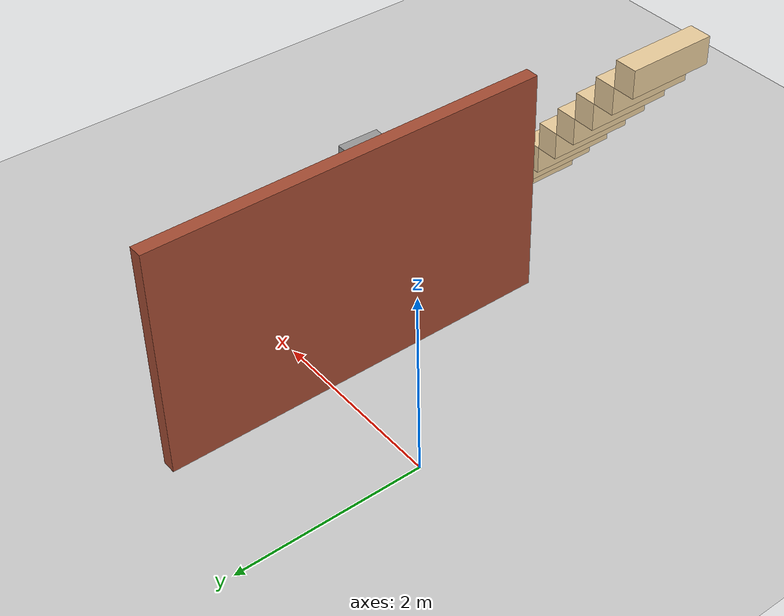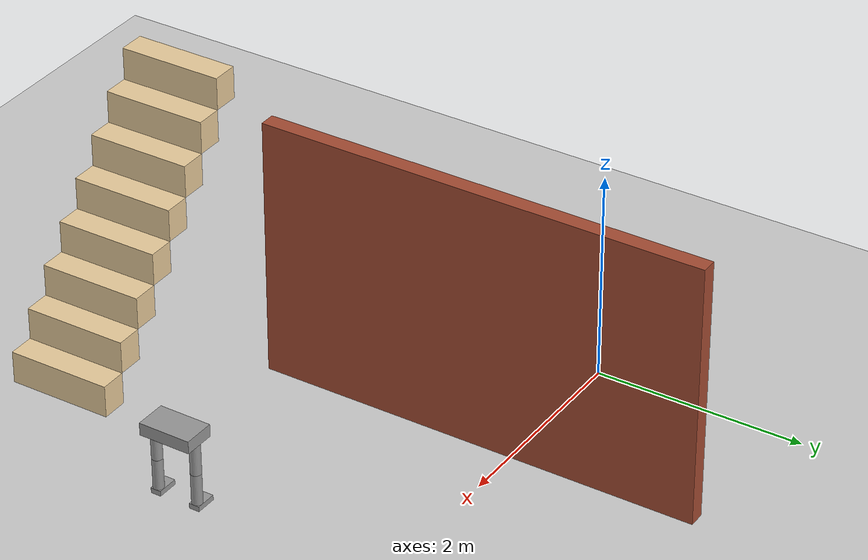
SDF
<sdf version="1.6">
 <world name="default">
  <model name="ground_plane">
   <static>1</static>
   <link name="link">
    <collision name="collision">
     <geometry><plane><normal>0 0 1</normal><size>100 100</size></plane></geometry>
     <surface><friction><ode><mu>100</mu><mu2>50</mu2></ode></friction></surface>
    </collision>
    <visual name="visual">
     <cast_shadows>0</cast_shadows>
     <geometry><plane><normal>0 0 1</normal><size>100 100</size></plane></geometry>
     <material>
      <script><uri>file://media/materials/scripts/gazebo.material</uri><name>Gazebo/Grey</name></script>
     </material>
    </visual>
   </link>
  </model>
  <model name="Humanoid">
   <link name="link_0">
    <pose>0.336877 -1.8722 0.949715 -0 -0 -0</pose>
    <inertial>
     <mass>1</mass>
     <inertia>
      <ixx>0.166667</ixx>
      <ixy>0</ixy>
      <ixz>0</ixz>
      <iyy>0.166667</iyy>
      <iyz>0</iyz>
      <izz>0.166667</izz>
     </inertia>
    </inertial>
    <visual name="visual">
     <geometry><box><size>0.3 0.5 0.12</size></box></geometry>
     <material>
      <lighting>1</lighting>
      <script><uri>file://media/materials/scripts/gazebo.material</uri><name>Gazebo/Grey</name></script>
      <shader type="pixel"><normal_map>__default__</normal_map></shader>
      <ambient>0.3 0.3 0.3 1</ambient>
      <diffuse>0.7 0.7 0.7 1</diffuse>
      <specular>0.01 0.01 0.01 1</specular>
      <emissive>0 0 0 1</emissive>
     </material>
    </visual>
    <collision name="collision">
     <geometry><box><size>0.3 0.5 0.1</size></box></geometry>
     <surface>
      <friction>
       <ode><mu>1</mu><mu2>1</mu2><fdir1>0 0 0</fdir1><slip1>0</slip1><slip2>0</slip2></ode>
       <torsional>
        <coefficient>1</coefficient>
        <patch_radius>0</patch_radius>
        <surface_radius>0</surface_radius>
        <use_patch_radius>1</use_patch_radius>
        <ode><slip>0</slip></ode>
       </torsional>
      </friction>
      <bounce><restitution_coefficient>0</restitution_coefficient><threshold>1e+06</threshold></bounce>
      <contact>
       <collide_without_contact>0</collide_without_contact>
       <collide_without_contact_bitmask>1</collide_without_contact_bitmask>
       <collide_bitmask>1</collide_bitmask>
       <ode>
        <soft_cfm>0</soft_cfm>
        <soft_erp>0.2</soft_erp>
        <kp>1e+13</kp>
        <kd>1</kd>
        <max_vel>0.01</max_vel>
        <min_depth>0</min_depth>
       </ode>
       <bullet>
        <split_impulse>1</split_impulse>
        <split_impulse_penetration_threshold>-0.01</split_impulse_penetration_threshold>
        <soft_cfm>0</soft_cfm>
        <soft_erp>0.2</soft_erp>
        <kp>1e+13</kp>
        <kd>1</kd>
       </bullet>
      </contact>
     </surface>
    </collision>
   </link>
   <link name="link_1">
    <pose>0.33738 -2.07145 0.439715 -0 -0 -0</pose>
    <inertial>
     <mass>1</mass>
     <inertia><ixx>0.145833</ixx><ixy>0</ixy><ixz>0</ixz><iyy>0.145833</iyy><iyz>0</iyz><izz>0.125</izz></inertia>
    </inertial>
    <visual name="visual">
     <geometry><cylinder><radius>0.05</radius><length>0.3</length></cylinder></geometry>
     <material>
      <lighting>1</lighting>
      <script><uri>file://media/materials/scripts/gazebo.material</uri><name>Gazebo/Grey</name></script>
      <shader type="pixel"><normal_map>__default__</normal_map></shader>
      <ambient>0.3 0.3 0.3 1</ambient>
      <diffuse>0.7 0.7 0.7 1</diffuse>
      <specular>0.01 0.01 0.01 1</specular>
      <emissive>0 0 0 1</emissive>
     </material>
    </visual>
    <collision name="collision">
     <geometry><cylinder><radius>0.05</radius><length>0.3</length></cylinder></geometry>
     <surface>
      <friction>
       <ode><mu>1</mu><mu2>1</mu2><fdir1>0 0 0</fdir1><slip1>0</slip1><slip2>0</slip2></ode>
       <torsional>
        <coefficient>1</coefficient>
        <patch_radius>0</patch_radius>
        <surface_radius>0</surface_radius>
        <use_patch_radius>1</use_patch_radius>
        <ode><slip>0</slip></ode>
       </torsional>
      </friction>
      <bounce><restitution_coefficient>0</restitution_coefficient><threshold>1e+06</threshold></bounce>
      <contact>
       <collide_without_contact>0</collide_without_contact>
       <collide_without_contact_bitmask>1</collide_without_contact_bitmask>
       <collide_bitmask>1</collide_bitmask>
       <ode>
        <soft_cfm>0</soft_cfm>
        <soft_erp>0.2</soft_erp>
        <kp>1e+13</kp>
        <kd>1</kd>
        <max_vel>0.01</max_vel>
        <min_depth>0</min_depth>
       </ode>
       <bullet>
        <split_impulse>1</split_impulse>
        <split_impulse_penetration_threshold>-0.01</split_impulse_penetration_threshold>
        <soft_cfm>0</soft_cfm>
        <soft_erp>0.2</soft_erp>
        <kp>1e+13</kp>
        <kd>1</kd>
       </bullet>
      </contact>
     </surface>
    </collision>
   </link>
   <link name="link_1_clone">
    <pose>0.336877 -2.0722 0.739716 -0 -0 -0</pose>
    <inertial>
     <mass>1</mass>
     <inertia><ixx>0.145833</ixx><ixy>0</ixy><ixz>0</ixz><iyy>0.145833</iyy><iyz>0</iyz><izz>0.125</izz></inertia>
    </inertial>
    <visual name="visual">
     <geometry><cylinder><radius>0.05</radius><length>0.3</length></cylinder></geometry>
     <material>
      <lighting>1</lighting>
      <script><uri>file://media/materials/scripts/gazebo.material</uri><name>Gazebo/Grey</name></script>
      <shader type="pixel"><normal_map>__default__</normal_map></shader>
      <ambient>0.3 0.3 0.3 1</ambient>
      <diffuse>0.7 0.7 0.7 1</diffuse>
      <specular>0.01 0.01 0.01 1</specular>
      <emissive>0 0 0 1</emissive>
     </material>
    </visual>
    <collision name="collision">
     <geometry><cylinder><radius>0.05</radius><length>0.3</length></cylinder></geometry>
     <surface>
      <friction>
       <ode><mu>1</mu><mu2>1</mu2><fdir1>0 0 0</fdir1><slip1>0</slip1><slip2>0</slip2></ode>
       <torsional>
        <coefficient>1</coefficient>
        <patch_radius>0</patch_radius>
        <surface_radius>0</surface_radius>
        <use_patch_radius>1</use_patch_radius>
        <ode><slip>0</slip></ode>
       </torsional>
      </friction>
      <bounce><restitution_coefficient>0</restitution_coefficient><threshold>1e+06</threshold></bounce>
      <contact>
       <collide_without_contact>0</collide_without_contact>
       <collide_without_contact_bitmask>1</collide_without_contact_bitmask>
       <collide_bitmask>1</collide_bitmask>
       <ode>
        <soft_cfm>0</soft_cfm>
        <soft_erp>0.2</soft_erp>
        <kp>1e+13</kp>
        <kd>1</kd>
        <max_vel>0.01</max_vel>
        <min_depth>0</min_depth>
       </ode>
       <bullet>
        <split_impulse>1</split_impulse>
        <split_impulse_penetration_threshold>-0.01</split_impulse_penetration_threshold>
        <soft_cfm>0</soft_cfm>
        <soft_erp>0.2</soft_erp>
        <kp>1e+13</kp>
        <kd>1</kd>
       </bullet>
      </contact>
     </surface>
    </collision>
   </link>
   <link name="link_1_clone_0">
    <pose>0.336877 -1.6722 0.739716 -0 -0 -0</pose>
    <inertial>
     <mass>1</mass>
     <inertia><ixx>0.145833</ixx><ixy>0</ixy><ixz>0</ixz><iyy>0.145833</iyy><iyz>0</iyz><izz>0.125</izz></inertia>
    </inertial>
    <visual name="visual">
     <geometry><cylinder><radius>0.05</radius><length>0.3</length></cylinder></geometry>
     <material>
      <lighting>1</lighting>
      <script><uri>file://media/materials/scripts/gazebo.material</uri><name>Gazebo/Grey</name></script>
      <shader type="pixel"><normal_map>__default__</normal_map></shader>
      <ambient>0.3 0.3 0.3 1</ambient>
      <diffuse>0.7 0.7 0.7 1</diffuse>
      <specular>0.01 0.01 0.01 1</specular>
      <emissive>0 0 0 1</emissive>
     </material>
    </visual>
    <collision name="collision">
     <geometry><cylinder><radius>0.05</radius><length>0.3</length></cylinder></geometry>
     <surface>
      <friction>
       <ode><mu>1</mu><mu2>1</mu2><fdir1>0 0 0</fdir1><slip1>0</slip1><slip2>0</slip2></ode>
       <torsional>
        <coefficient>1</coefficient>
        <patch_radius>0</patch_radius>
        <surface_radius>0</surface_radius>
        <use_patch_radius>1</use_patch_radius>
        <ode><slip>0</slip></ode>
       </torsional>
      </friction>
      <bounce><restitution_coefficient>0</restitution_coefficient><threshold>1e+06</threshold></bounce>
      <contact>
       <collide_without_contact>0</collide_without_contact>
       <collide_without_contact_bitmask>1</collide_without_contact_bitmask>
       <collide_bitmask>1</collide_bitmask>
       <ode>
        <soft_cfm>0</soft_cfm>
        <soft_erp>0.2</soft_erp>
        <kp>1e+13</kp>
        <kd>1</kd>
        <max_vel>0.01</max_vel>
        <min_depth>0</min_depth>
       </ode>
       <bullet>
        <split_impulse>1</split_impulse>
        <split_impulse_penetration_threshold>-0.01</split_impulse_penetration_threshold>
        <soft_cfm>0</soft_cfm>
        <soft_erp>0.2</soft_erp>
        <kp>1e+13</kp>
        <kd>1</kd>
       </bullet>
      </contact>
     </surface>
    </collision>
   </link>
   <link name="link_1_clone_1">
    <pose>0.336877 -1.6722 0.439715 -0 -0 -0</pose>
    <inertial>
     <mass>1</mass>
     <inertia><ixx>0.145833</ixx><ixy>0</ixy><ixz>0</ixz><iyy>0.145833</iyy><iyz>0</iyz><izz>0.125</izz></inertia>
    </inertial>
    <visual name="visual">
     <geometry><cylinder><radius>0.05</radius><length>0.3</length></cylinder></geometry>
     <material>
      <lighting>1</lighting>
      <script><uri>file://media/materials/scripts/gazebo.material</uri><name>Gazebo/Grey</name></script>
      <shader type="pixel"><normal_map>__default__</normal_map></shader>
      <ambient>0.3 0.3 0.3 1</ambient>
      <diffuse>0.7 0.7 0.7 1</diffuse>
      <specular>0.01 0.01 0.01 1</specular>
      <emissive>0 0 0 1</emissive>
     </material>
    </visual>
    <collision name="collision">
     <geometry><cylinder><radius>0.05</radius><length>0.3</length></cylinder></geometry>
     <surface>
      <friction>
       <ode><mu>1</mu><mu2>1</mu2><fdir1>0 0 0</fdir1><slip1>0</slip1><slip2>0</slip2></ode>
       <torsional>
        <coefficient>1</coefficient>
        <patch_radius>0</patch_radius>
        <surface_radius>0</surface_radius>
        <use_patch_radius>1</use_patch_radius>
        <ode><slip>0</slip></ode>
       </torsional>
      </friction>
      <bounce><restitution_coefficient>0</restitution_coefficient><threshold>1e+06</threshold></bounce>
      <contact>
       <collide_without_contact>0</collide_without_contact>
       <collide_without_contact_bitmask>1</collide_without_contact_bitmask>
       <collide_bitmask>1</collide_bitmask>
       <ode>
        <soft_cfm>0</soft_cfm>
        <soft_erp>0.2</soft_erp>
        <kp>1e+13</kp>
        <kd>1</kd>
        <max_vel>0.01</max_vel>
        <min_depth>0</min_depth>
       </ode>
       <bullet>
        <split_impulse>1</split_impulse>
        <split_impulse_penetration_threshold>-0.01</split_impulse_penetration_threshold>
        <soft_cfm>0</soft_cfm>
        <soft_erp>0.2</soft_erp>
        <kp>1e+13</kp>
        <kd>1</kd>
       </bullet>
      </contact>
     </surface>
    </collision>
   </link>
   <link name="link_2">
    <pose>0.284566 -2.06785 0.266379 -0 -0 -0</pose>
    <inertial>
     <mass>1</mass>
     <inertia>
      <ixx>0.166667</ixx>
      <ixy>0</ixy>
      <ixz>0</ixz>
      <iyy>0.166667</iyy>
      <iyz>0</iyz>
      <izz>0.166667</izz>
     </inertia>
    </inertial>
    <visual name="visual">
     <geometry><box><size>0.2 0.1 0.05</size></box></geometry>
     <material>
      <lighting>1</lighting>
      <script><uri>file://media/materials/scripts/gazebo.material</uri><name>Gazebo/Grey</name></script>
      <shader type="pixel"><normal_map>__default__</normal_map></shader>
      <ambient>0.3 0.3 0.3 1</ambient>
      <diffuse>0.7 0.7 0.7 1</diffuse>
      <specular>0.01 0.01 0.01 1</specular>
      <emissive>0 0 0 1</emissive>
     </material>
    </visual>
    <collision name="collision">
     <geometry><box><size>0.2 0.1 0.05</size></box></geometry>
     <surface>
      <friction>
       <ode><mu>1</mu><mu2>1</mu2><fdir1>0 0 0</fdir1><slip1>0</slip1><slip2>0</slip2></ode>
       <torsional>
        <coefficient>1</coefficient>
        <patch_radius>0</patch_radius>
        <surface_radius>0</surface_radius>
        <use_patch_radius>1</use_patch_radius>
        <ode><slip>0</slip></ode>
       </torsional>
      </friction>
      <bounce><restitution_coefficient>0</restitution_coefficient><threshold>1e+06</threshold></bounce>
      <contact>
       <collide_without_contact>0</collide_without_contact>
       <collide_without_contact_bitmask>1</collide_without_contact_bitmask>
       <collide_bitmask>1</collide_bitmask>
       <ode>
        <soft_cfm>0</soft_cfm>
        <soft_erp>0.2</soft_erp>
        <kp>1e+13</kp>
        <kd>1</kd>
        <max_vel>0.01</max_vel>
        <min_depth>0</min_depth>
       </ode>
       <bullet>
        <split_impulse>1</split_impulse>
        <split_impulse_penetration_threshold>-0.01</split_impulse_penetration_threshold>
        <soft_cfm>0</soft_cfm>
        <soft_erp>0.2</soft_erp>
        <kp>1e+13</kp>
        <kd>1</kd>
       </bullet>
      </contact>
     </surface>
    </collision>
   </link>
   <link name="link_2_clone">
    <pose>0.284446 -1.67061 0.264715 -0 -0 -0</pose>
    <inertial>
     <mass>1</mass>
     <inertia>
      <ixx>0.166667</ixx>
      <ixy>0</ixy>
      <ixz>0</ixz>
      <iyy>0.166667</iyy>
      <iyz>0</iyz>
      <izz>0.166667</izz>
     </inertia>
    </inertial>
    <visual name="visual">
     <geometry><box><size>0.2 0.1 0.05</size></box></geometry>
     <material>
      <lighting>1</lighting>
      <script><uri>file://media/materials/scripts/gazebo.material</uri><name>Gazebo/Grey</name></script>
      <shader type="pixel"><normal_map>__default__</normal_map></shader>
      <ambient>0.3 0.3 0.3 1</ambient>
      <diffuse>0.7 0.7 0.7 1</diffuse>
      <specular>0.01 0.01 0.01 1</specular>
      <emissive>0 0 0 1</emissive>
     </material>
    </visual>
    <collision name="collision">
     <geometry><box><size>0.2 0.1 0.05</size></box></geometry>
     <surface>
      <friction>
       <ode><mu>1</mu><mu2>1</mu2><fdir1>0 0 0</fdir1><slip1>0</slip1><slip2>0</slip2></ode>
       <torsional>
        <coefficient>1</coefficient>
        <patch_radius>0</patch_radius>
        <surface_radius>0</surface_radius>
        <use_patch_radius>1</use_patch_radius>
        <ode><slip>0</slip></ode>
       </torsional>
      </friction>
      <bounce><restitution_coefficient>0</restitution_coefficient><threshold>1e+06</threshold></bounce>
      <contact>
       <collide_without_contact>0</collide_without_contact>
       <collide_without_contact_bitmask>1</collide_without_contact_bitmask>
       <collide_bitmask>1</collide_bitmask>
       <ode>
        <soft_cfm>0</soft_cfm>
        <soft_erp>0.2</soft_erp>
        <kp>1e+13</kp>
        <kd>1</kd>
        <max_vel>0.01</max_vel>
        <min_depth>0</min_depth>
       </ode>
       <bullet>
        <split_impulse>1</split_impulse>
        <split_impulse_penetration_threshold>-0.01</split_impulse_penetration_threshold>
        <soft_cfm>0</soft_cfm>
        <soft_erp>0.2</soft_erp>
        <kp>1e+13</kp>
        <kd>1</kd>
       </bullet>
      </contact>
     </surface>
    </collision>
   </link>
   <joint name="link_0_JOINT_0" type="fixed">
    <parent>link_0</parent>
    <child>link_1_clone</child>
    <physics>
     <ode><limit><cfm>0</cfm><erp>0.2</erp></limit><suspension><cfm>0</cfm><erp>0.2</erp></suspension></ode>
    </physics>
   </joint>
   <joint name="link_0_JOINT_1" type="fixed">
    <parent>link_0</parent>
    <child>link_1_clone_0</child>
    <physics>
     <ode><limit><cfm>0</cfm><erp>0.2</erp></limit><suspension><cfm>0</cfm><erp>0.2</erp></suspension></ode>
    </physics>
   </joint>
   <joint name="link_1_JOINT_5" type="fixed">
    <parent>link_1</parent>
    <child>link_2</child>
    <physics>
     <ode><limit><cfm>0</cfm><erp>0.2</erp></limit><suspension><cfm>0</cfm><erp>0.2</erp></suspension></ode>
    </physics>
   </joint>
   <joint name="link_1_clone_0_JOINT_2" type="fixed">
    <parent>link_1_clone_0</parent>
    <child>link_1_clone_1</child>
    <physics>
     <ode><limit><cfm>0</cfm><erp>0.2</erp></limit><suspension><cfm>0</cfm><erp>0.2</erp></suspension></ode>
    </physics>
   </joint>
   <joint name="link_1_clone_1_JOINT_4" type="fixed">
    <parent>link_1_clone_1</parent>
    <child>link_2_clone</child>
    <physics>
     <ode><limit><cfm>0</cfm><erp>0.2</erp></limit><suspension><cfm>0</cfm><erp>0.2</erp></suspension></ode>
    </physics>
   </joint>
   <joint name="link_1_clone_JOINT_3" type="revolute">
    <parent>link_1_clone</parent>
    <child>link_1</child>
    <axis>
     <xyz>1 0 0</xyz>
     <use_parent_model_frame>0</use_parent_model_frame>
     <limit>
      <lower>-1.79769e+308</lower>
      <upper>1.79769e+308</upper>
      <effort>-1</effort>
      <velocity>-1</velocity>
     </limit>
     <dynamics>
      <spring_reference>0</spring_reference>
      <spring_stiffness>0</spring_stiffness>
      <damping>0</damping>
      <friction>0</friction>
     </dynamics>
    </axis>
    <physics>
     <ode><limit><cfm>0</cfm><erp>0.2</erp></limit><suspension><cfm>0</cfm><erp>0.2</erp></suspension></ode>
    </physics>
   </joint>
   <static>0</static>
   <pose>3.18747 -0.142987 -0.231577 0.00473 -4e-06 -0.012782</pose>
  </model>
  <model name="Home">
   <link name="Stairs_2">
    <visual name="Stairs_2_Visual_0">
     <pose>2.4646 -2.89263 0.15625 0 0 -1.5708</pose>
     <geometry><box><size>1 0.25375 0.3125</size></box></geometry>
     <material>
      <script><uri>file://media/materials/scripts/gazebo.material</uri><name>Gazebo/Grey</name></script>
      <ambient>0.921569 0.807843 0.615686 1</ambient>
     </material>
     <meta><layer>0</layer></meta>
    </visual>
    <visual name="Stairs_2_Visual_1">
     <pose>2.21085 -2.89263 0.46875 0 0 -1.5708</pose>
     <geometry><box><size>1 0.25375 0.3125</size></box></geometry>
     <material>
      <script><uri>file://media/materials/scripts/gazebo.material</uri><name>Gazebo/Grey</name></script>
      <ambient>0.921569 0.807843 0.615686 1</ambient>
     </material>
     <meta><layer>0</layer></meta>
    </visual>
    <visual name="Stairs_2_Visual_2">
     <pose>1.9571 -2.89263 0.78125 0 0 -1.5708</pose>
     <geometry><box><size>1 0.25375 0.3125</size></box></geometry>
     <material>
      <script><uri>file://media/materials/scripts/gazebo.material</uri><name>Gazebo/Grey</name></script>
      <ambient>0.921569 0.807843 0.615686 1</ambient>
     </material>
     <meta><layer>0</layer></meta>
    </visual>
    <visual name="Stairs_2_Visual_3">
     <pose>1.70335 -2.89263 1.09375 0 0 -1.5708</pose>
     <geometry><box><size>1 0.25375 0.3125</size></box></geometry>
     <material>
      <script><uri>file://media/materials/scripts/gazebo.material</uri><name>Gazebo/Grey</name></script>
      <ambient>0.921569 0.807843 0.615686 1</ambient>
     </material>
     <meta><layer>0</layer></meta>
    </visual>
    <visual name="Stairs_2_Visual_4">
     <pose>1.4496 -2.89263 1.40625 0 0 -1.5708</pose>
     <geometry><box><size>1 0.25375 0.3125</size></box></geometry>
     <material>
      <script><uri>file://media/materials/scripts/gazebo.material</uri><name>Gazebo/Grey</name></script>
      <ambient>0.921569 0.807843 0.615686 1</ambient>
     </material>
     <meta><layer>0</layer></meta>
    </visual>
    <visual name="Stairs_2_Visual_5">
     <pose>1.19585 -2.89263 1.71875 0 0 -1.5708</pose>
     <geometry><box><size>1 0.25375 0.3125</size></box></geometry>
     <material>
      <script><uri>file://media/materials/scripts/gazebo.material</uri><name>Gazebo/Grey</name></script>
      <ambient>0.921569 0.807843 0.615686 1</ambient>
     </material>
     <meta><layer>0</layer></meta>
    </visual>
    <visual name="Stairs_2_Visual_6">
     <pose>0.942102 -2.89263 2.03125 0 0 -1.5708</pose>
     <geometry><box><size>1 0.25375 0.3125</size></box></geometry>
     <material>
      <script><uri>file://media/materials/scripts/gazebo.material</uri><name>Gazebo/Grey</name></script>
      <ambient>0.921569 0.807843 0.615686 1</ambient>
     </material>
     <meta><layer>0</layer></meta>
    </visual>
    <visual name="Stairs_2_Visual_7">
     <pose>0.688352 -2.89263 2.34375 0 0 -1.5708</pose>
     <geometry><box><size>1 0.25375 0.3125</size></box></geometry>
     <material>
      <script><uri>file://media/materials/scripts/gazebo.material</uri><name>Gazebo/Grey</name></script>
      <ambient>0.921569 0.807843 0.615686 1</ambient>
     </material>
     <meta><layer>0</layer></meta>
    </visual>
    <collision name="Stairs_2_Collision_0">
     <pose>2.4646 -2.89263 0.15625 0 0 -1.5708</pose>
     <geometry><box><size>1 0.25375 0.3125</size></box></geometry>
     <surface>
      <friction>
       <ode><mu>1</mu><mu2>1</mu2><fdir1>0 0 0</fdir1><slip1>0</slip1><slip2>0</slip2></ode>
       <torsional>
        <coefficient>1</coefficient>
        <patch_radius>0</patch_radius>
        <surface_radius>0</surface_radius>
        <use_patch_radius>1</use_patch_radius>
        <ode><slip>0</slip></ode>
       </torsional>
      </friction>
      <bounce><restitution_coefficient>0</restitution_coefficient><threshold>1e+06</threshold></bounce>
      <contact>
       <collide_without_contact>0</collide_without_contact>
       <collide_without_contact_bitmask>1</collide_without_contact_bitmask>
       <collide_bitmask>1</collide_bitmask>
       <ode>
        <soft_cfm>0</soft_cfm>
        <soft_erp>0.2</soft_erp>
        <kp>1e+13</kp>
        <kd>1</kd>
        <max_vel>0.01</max_vel>
        <min_depth>0</min_depth>
       </ode>
       <bullet>
        <split_impulse>1</split_impulse>
        <split_impulse_penetration_threshold>-0.01</split_impulse_penetration_threshold>
        <soft_cfm>0</soft_cfm>
        <soft_erp>0.2</soft_erp>
        <kp>1e+13</kp>
        <kd>1</kd>
       </bullet>
      </contact>
     </surface>
    </collision>
    <collision name="Stairs_2_Collision_1">
     <pose>2.21085 -2.89263 0.46875 0 0 -1.5708</pose>
     <geometry><box><size>1 0.25375 0.3125</size></box></geometry>
     <surface>
      <friction>
       <ode><mu>1</mu><mu2>1</mu2><fdir1>0 0 0</fdir1><slip1>0</slip1><slip2>0</slip2></ode>
       <torsional>
        <coefficient>1</coefficient>
        <patch_radius>0</patch_radius>
        <surface_radius>0</surface_radius>
        <use_patch_radius>1</use_patch_radius>
        <ode><slip>0</slip></ode>
       </torsional>
      </friction>
      <bounce><restitution_coefficient>0</restitution_coefficient><threshold>1e+06</threshold></bounce>
      <contact>
       <collide_without_contact>0</collide_without_contact>
       <collide_without_contact_bitmask>1</collide_without_contact_bitmask>
       <collide_bitmask>1</collide_bitmask>
       <ode>
        <soft_cfm>0</soft_cfm>
        <soft_erp>0.2</soft_erp>
        <kp>1e+13</kp>
        <kd>1</kd>
        <max_vel>0.01</max_vel>
        <min_depth>0</min_depth>
       </ode>
       <bullet>
        <split_impulse>1</split_impulse>
        <split_impulse_penetration_threshold>-0.01</split_impulse_penetration_threshold>
        <soft_cfm>0</soft_cfm>
        <soft_erp>0.2</soft_erp>
        <kp>1e+13</kp>
        <kd>1</kd>
       </bullet>
      </contact>
     </surface>
    </collision>
    <collision name="Stairs_2_Collision_2">
     <pose>1.9571 -2.89263 0.78125 0 0 -1.5708</pose>
     <geometry><box><size>1 0.25375 0.3125</size></box></geometry>
     <surface>
      <friction>
       <ode><mu>1</mu><mu2>1</mu2><fdir1>0 0 0</fdir1><slip1>0</slip1><slip2>0</slip2></ode>
       <torsional>
        <coefficient>1</coefficient>
        <patch_radius>0</patch_radius>
        <surface_radius>0</surface_radius>
        <use_patch_radius>1</use_patch_radius>
        <ode><slip>0</slip></ode>
       </torsional>
      </friction>
      <bounce><restitution_coefficient>0</restitution_coefficient><threshold>1e+06</threshold></bounce>
      <contact>
       <collide_without_contact>0</collide_without_contact>
       <collide_without_contact_bitmask>1</collide_without_contact_bitmask>
       <collide_bitmask>1</collide_bitmask>
       <ode>
        <soft_cfm>0</soft_cfm>
        <soft_erp>0.2</soft_erp>
        <kp>1e+13</kp>
        <kd>1</kd>
        <max_vel>0.01</max_vel>
        <min_depth>0</min_depth>
       </ode>
       <bullet>
        <split_impulse>1</split_impulse>
        <split_impulse_penetration_threshold>-0.01</split_impulse_penetration_threshold>
        <soft_cfm>0</soft_cfm>
        <soft_erp>0.2</soft_erp>
        <kp>1e+13</kp>
        <kd>1</kd>
       </bullet>
      </contact>
     </surface>
    </collision>
    <collision name="Stairs_2_Collision_3">
     <pose>1.70335 -2.89263 1.09375 0 0 -1.5708</pose>
     <geometry><box><size>1 0.25375 0.3125</size></box></geometry>
     <surface>
      <friction>
       <ode><mu>1</mu><mu2>1</mu2><fdir1>0 0 0</fdir1><slip1>0</slip1><slip2>0</slip2></ode>
       <torsional>
        <coefficient>1</coefficient>
        <patch_radius>0</patch_radius>
        <surface_radius>0</surface_radius>
        <use_patch_radius>1</use_patch_radius>
        <ode><slip>0</slip></ode>
       </torsional>
      </friction>
      <bounce><restitution_coefficient>0</restitution_coefficient><threshold>1e+06</threshold></bounce>
      <contact>
       <collide_without_contact>0</collide_without_contact>
       <collide_without_contact_bitmask>1</collide_without_contact_bitmask>
       <collide_bitmask>1</collide_bitmask>
       <ode>
        <soft_cfm>0</soft_cfm>
        <soft_erp>0.2</soft_erp>
        <kp>1e+13</kp>
        <kd>1</kd>
        <max_vel>0.01</max_vel>
        <min_depth>0</min_depth>
       </ode>
       <bullet>
        <split_impulse>1</split_impulse>
        <split_impulse_penetration_threshold>-0.01</split_impulse_penetration_threshold>
        <soft_cfm>0</soft_cfm>
        <soft_erp>0.2</soft_erp>
        <kp>1e+13</kp>
        <kd>1</kd>
       </bullet>
      </contact>
     </surface>
    </collision>
    <collision name="Stairs_2_Collision_4">
     <pose>1.4496 -2.89263 1.40625 0 0 -1.5708</pose>
     <geometry><box><size>1 0.25375 0.3125</size></box></geometry>
     <surface>
      <friction>
       <ode><mu>1</mu><mu2>1</mu2><fdir1>0 0 0</fdir1><slip1>0</slip1><slip2>0</slip2></ode>
       <torsional>
        <coefficient>1</coefficient>
        <patch_radius>0</patch_radius>
        <surface_radius>0</surface_radius>
        <use_patch_radius>1</use_patch_radius>
        <ode><slip>0</slip></ode>
       </torsional>
      </friction>
      <bounce><restitution_coefficient>0</restitution_coefficient><threshold>1e+06</threshold></bounce>
      <contact>
       <collide_without_contact>0</collide_without_contact>
       <collide_without_contact_bitmask>1</collide_without_contact_bitmask>
       <collide_bitmask>1</collide_bitmask>
       <ode>
        <soft_cfm>0</soft_cfm>
        <soft_erp>0.2</soft_erp>
        <kp>1e+13</kp>
        <kd>1</kd>
        <max_vel>0.01</max_vel>
        <min_depth>0</min_depth>
       </ode>
       <bullet>
        <split_impulse>1</split_impulse>
        <split_impulse_penetration_threshold>-0.01</split_impulse_penetration_threshold>
        <soft_cfm>0</soft_cfm>
        <soft_erp>0.2</soft_erp>
        <kp>1e+13</kp>
        <kd>1</kd>
       </bullet>
      </contact>
     </surface>
    </collision>
    <collision name="Stairs_2_Collision_5">
     <pose>1.19585 -2.89263 1.71875 0 0 -1.5708</pose>
     <geometry><box><size>1 0.25375 0.3125</size></box></geometry>
     <surface>
      <friction>
       <ode><mu>1</mu><mu2>1</mu2><fdir1>0 0 0</fdir1><slip1>0</slip1><slip2>0</slip2></ode>
       <torsional>
        <coefficient>1</coefficient>
        <patch_radius>0</patch_radius>
        <surface_radius>0</surface_radius>
        <use_patch_radius>1</use_patch_radius>
        <ode><slip>0</slip></ode>
       </torsional>
      </friction>
      <bounce><restitution_coefficient>0</restitution_coefficient><threshold>1e+06</threshold></bounce>
      <contact>
       <collide_without_contact>0</collide_without_contact>
       <collide_without_contact_bitmask>1</collide_without_contact_bitmask>
       <collide_bitmask>1</collide_bitmask>
       <ode>
        <soft_cfm>0</soft_cfm>
        <soft_erp>0.2</soft_erp>
        <kp>1e+13</kp>
        <kd>1</kd>
        <max_vel>0.01</max_vel>
        <min_depth>0</min_depth>
       </ode>
       <bullet>
        <split_impulse>1</split_impulse>
        <split_impulse_penetration_threshold>-0.01</split_impulse_penetration_threshold>
        <soft_cfm>0</soft_cfm>
        <soft_erp>0.2</soft_erp>
        <kp>1e+13</kp>
        <kd>1</kd>
       </bullet>
      </contact>
     </surface>
    </collision>
    <collision name="Stairs_2_Collision_6">
     <pose>0.942102 -2.89263 2.03125 0 0 -1.5708</pose>
     <geometry><box><size>1 0.25375 0.3125</size></box></geometry>
     <surface>
      <friction>
       <ode><mu>1</mu><mu2>1</mu2><fdir1>0 0 0</fdir1><slip1>0</slip1><slip2>0</slip2></ode>
       <torsional>
        <coefficient>1</coefficient>
        <patch_radius>0</patch_radius>
        <surface_radius>0</surface_radius>
        <use_patch_radius>1</use_patch_radius>
        <ode><slip>0</slip></ode>
       </torsional>
      </friction>
      <bounce><restitution_coefficient>0</restitution_coefficient><threshold>1e+06</threshold></bounce>
      <contact>
       <collide_without_contact>0</collide_without_contact>
       <collide_without_contact_bitmask>1</collide_without_contact_bitmask>
       <collide_bitmask>1</collide_bitmask>
       <ode>
        <soft_cfm>0</soft_cfm>
        <soft_erp>0.2</soft_erp>
        <kp>1e+13</kp>
        <kd>1</kd>
        <max_vel>0.01</max_vel>
        <min_depth>0</min_depth>
       </ode>
       <bullet>
        <split_impulse>1</split_impulse>
        <split_impulse_penetration_threshold>-0.01</split_impulse_penetration_threshold>
        <soft_cfm>0</soft_cfm>
        <soft_erp>0.2</soft_erp>
        <kp>1e+13</kp>
        <kd>1</kd>
       </bullet>
      </contact>
     </surface>
    </collision>
    <collision name="Stairs_2_Collision_7">
     <pose>0.688352 -2.89263 2.34375 0 0 -1.5708</pose>
     <geometry><box><size>1 0.25375 0.3125</size></box></geometry>
     <surface>
      <friction>
       <ode><mu>1</mu><mu2>1</mu2><fdir1>0 0 0</fdir1><slip1>0</slip1><slip2>0</slip2></ode>
       <torsional>
        <coefficient>1</coefficient>
        <patch_radius>0</patch_radius>
        <surface_radius>0</surface_radius>
        <use_patch_radius>1</use_patch_radius>
        <ode><slip>0</slip></ode>
       </torsional>
      </friction>
      <bounce><restitution_coefficient>0</restitution_coefficient><threshold>1e+06</threshold></bounce>
      <contact>
       <collide_without_contact>0</collide_without_contact>
       <collide_without_contact_bitmask>1</collide_without_contact_bitmask>
       <collide_bitmask>1</collide_bitmask>
       <ode>
        <soft_cfm>0</soft_cfm>
        <soft_erp>0.2</soft_erp>
        <kp>1e+13</kp>
        <kd>1</kd>
        <max_vel>0.01</max_vel>
        <min_depth>0</min_depth>
       </ode>
       <bullet>
        <split_impulse>1</split_impulse>
        <split_impulse_penetration_threshold>-0.01</split_impulse_penetration_threshold>
        <soft_cfm>0</soft_cfm>
        <soft_erp>0.2</soft_erp>
        <kp>1e+13</kp>
        <kd>1</kd>
       </bullet>
      </contact>
     </surface>
    </collision>
   </link>
   <link name="Wall_11">
    <pose>1.14922 0.491284 0 0 -0 1.5708</pose>
    <visual name="Wall_11_Visual">
     <pose>0 0 1.25 0 -0 0</pose>
     <geometry><box><size>4.25 0.15 2.5</size></box></geometry>
     <material>
      <script><uri>file://media/materials/scripts/gazebo.material</uri><name>Gazebo/Bricks</name></script>
      <ambient>1 1 1 1</ambient>
     </material>
     <meta><layer>0</layer></meta>
    </visual>
    <collision name="Wall_11_Collision">
     <pose>0 0 1.25 0 -0 0</pose>
     <geometry><box><size>4.25 0.15 2.5</size></box></geometry>
     <surface>
      <friction>
       <ode><mu>1</mu><mu2>1</mu2><fdir1>0 0 0</fdir1><slip1>0</slip1><slip2>0</slip2></ode>
       <torsional>
        <coefficient>1</coefficient>
        <patch_radius>0</patch_radius>
        <surface_radius>0</surface_radius>
        <use_patch_radius>1</use_patch_radius>
        <ode><slip>0</slip></ode>
       </torsional>
      </friction>
      <bounce><restitution_coefficient>0</restitution_coefficient><threshold>1e+06</threshold></bounce>
      <contact>
       <collide_without_contact>0</collide_without_contact>
       <collide_without_contact_bitmask>1</collide_without_contact_bitmask>
       <collide_bitmask>1</collide_bitmask>
       <ode>
        <soft_cfm>0</soft_cfm>
        <soft_erp>0.2</soft_erp>
        <kp>1e+13</kp>
        <kd>1</kd>
        <max_vel>0.01</max_vel>
        <min_depth>0</min_depth>
       </ode>
       <bullet>
        <split_impulse>1</split_impulse>
        <split_impulse_penetration_threshold>-0.01</split_impulse_penetration_threshold>
        <soft_cfm>0</soft_cfm>
        <soft_erp>0.2</soft_erp>
        <kp>1e+13</kp>
        <kd>1</kd>
       </bullet>
      </contact>
     </surface>
    </collision>
   </link>
   <static>1</static>
   <pose>0.277352 -0.848927 0 0 -0 0</pose>
  </model>
 </world>
</sdf>
